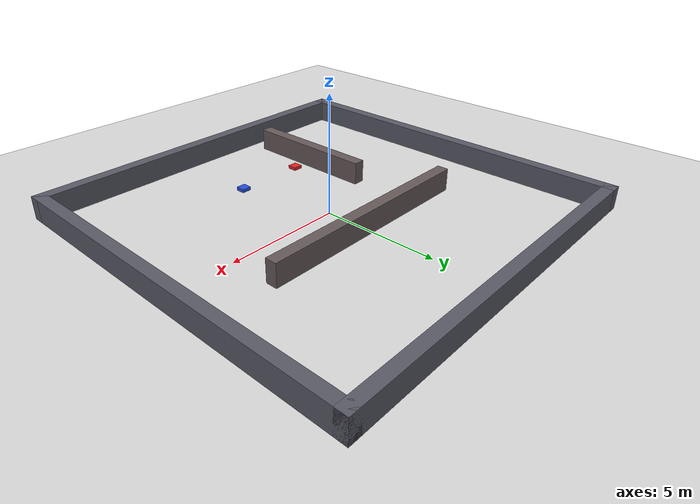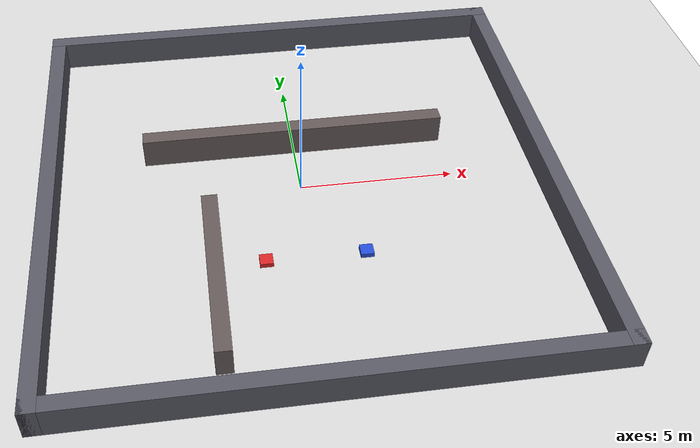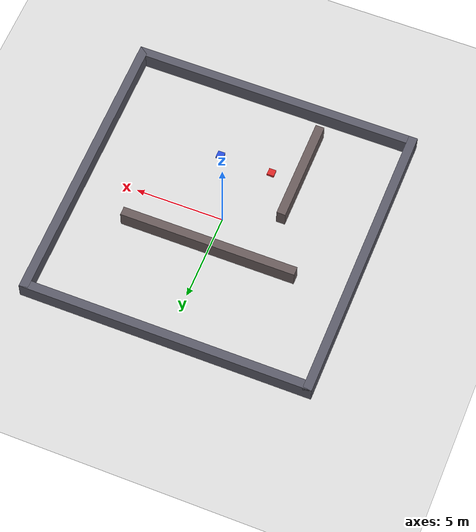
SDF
<?xml version="1.0" ?>
<sdf version="1.8">
  <world name="room_two">
    <physics name="1ms" type="ignored">
      <max_step_size>0.004</max_step_size>
      <real_time_factor>1.0</real_time_factor>
    </physics>
    <plugin filename="gz-sim-physics-system" name="gz::sim::systems::Physics"/>
    <plugin filename="gz-sim-user-commands-system" name="gz::sim::systems::UserCommands"/>
    <plugin filename="gz-sim-scene-broadcaster-system" name="gz::sim::systems::SceneBroadcaster"/>
    <plugin filename="gz-sim-sensors-system" name="gz::sim::systems::Sensors">
      <render_engine>ogre2</render_engine>
    </plugin>

    <light type="directional" name="sun">
      <cast_shadows>true</cast_shadows>
      <pose>0 0 10 0 0 0</pose>
      <diffuse>0.9 0.9 0.9 1</diffuse>
      <specular>0.2 0.2 0.2 1</specular>
      <direction>-0.5 0.1 -0.9</direction>
    </light>

    <model name="ground_plane">
      <static>true</static>
      <link name="link">
        <collision name="collision">
          <geometry><plane><normal>0 0 1</normal><size>60 60</size></plane></geometry>
        </collision>
        <visual name="visual">
          <geometry><plane><normal>0 0 1</normal><size>60 60</size></plane></geometry>
          <material><ambient>0.85 0.85 0.85 1</ambient><diffuse>0.85 0.85 0.85 1</diffuse></material>
        </visual>
      </link>
    </model>

    <!-- Outer boundary (16 x 16 m room), 0.5 m thick walls (= 2 grid cells). -->
    <model name="wall_n"><static>true</static><pose>0 8 0.5 0 0 0</pose>
      <link name="l"><collision name="c"><geometry><box><size>16.5 0.5 1</size></box></geometry></collision>
      <visual name="v"><geometry><box><size>16.5 0.5 1</size></box></geometry>
      <material><ambient>0.35 0.35 0.4 1</ambient><diffuse>0.35 0.35 0.4 1</diffuse></material></visual></link></model>
    <model name="wall_s"><static>true</static><pose>0 -8 0.5 0 0 0</pose>
      <link name="l"><collision name="c"><geometry><box><size>16.5 0.5 1</size></box></geometry></collision>
      <visual name="v"><geometry><box><size>16.5 0.5 1</size></box></geometry>
      <material><ambient>0.35 0.35 0.4 1</ambient><diffuse>0.35 0.35 0.4 1</diffuse></material></visual></link></model>
    <model name="wall_e"><static>true</static><pose>8 0 0.5 0 0 0</pose>
      <link name="l"><collision name="c"><geometry><box><size>0.5 16.5 1</size></box></geometry></collision>
      <visual name="v"><geometry><box><size>0.5 16.5 1</size></box></geometry>
      <material><ambient>0.35 0.35 0.4 1</ambient><diffuse>0.35 0.35 0.4 1</diffuse></material></visual></link></model>
    <model name="wall_w"><static>true</static><pose>-8 0 0.5 0 0 0</pose>
      <link name="l"><collision name="c"><geometry><box><size>0.5 16.5 1</size></box></geometry></collision>
      <visual name="v"><geometry><box><size>0.5 16.5 1</size></box></geometry>
      <material><ambient>0.35 0.35 0.4 1</ambient><diffuse>0.35 0.35 0.4 1</diffuse></material></visual></link></model>

    <!-- Internal walls. -->
    <model name="wall_div"><static>true</static><pose>0 2 0.5 0 0 0</pose>
      <link name="l"><collision name="c"><geometry><box><size>10 0.5 1</size></box></geometry></collision>
      <visual name="v"><geometry><box><size>10 0.5 1</size></box></geometry>
      <material><ambient>0.4 0.35 0.35 1</ambient><diffuse>0.4 0.35 0.35 1</diffuse></material></visual></link></model>
    <model name="wall_stub"><static>true</static><pose>-3 -4 0.5 0 0 0</pose>
      <link name="l"><collision name="c"><geometry><box><size>0.5 6 1</size></box></geometry></collision>
      <visual name="v"><geometry><box><size>0.5 6 1</size></box></geometry>
      <material><ambient>0.4 0.35 0.35 1</ambient><diffuse>0.4 0.35 0.35 1</diffuse></material></visual></link></model>

    <!-- Drone 1 (red), shared base in the open lower area. -->
    <model name="drone1">
      <pose>-1.5 -3.5 0.5 0 0 0</pose>
      <link name="base_link">
        <inertial><mass>1.0</mass>
          <inertia><ixx>0.02</ixx><iyy>0.02</iyy><izz>0.02</izz><ixy>0</ixy><ixz>0</ixz><iyz>0</iyz></inertia></inertial>
        <collision name="collision"><geometry><box><size>0.4 0.4 0.15</size></box></geometry></collision>
        <visual name="visual"><geometry><box><size>0.4 0.4 0.15</size></box></geometry>
          <material><ambient>0.85 0.15 0.15 1</ambient><diffuse>0.85 0.15 0.15 1</diffuse></material></visual>
        <sensor name="lidar" type="gpu_lidar">
          <pose>0 0 0.1 0 0 0</pose><topic>/model/drone1/scan</topic>
          <update_rate>10</update_rate><always_on>1</always_on><visualize>true</visualize>
          <lidar>
            <scan><horizontal><samples>360</samples><resolution>1</resolution>
              <min_angle>-3.141592653589793</min_angle><max_angle>3.141592653589793</max_angle></horizontal>
              <vertical><samples>1</samples><min_angle>0</min_angle><max_angle>0</max_angle></vertical></scan>
            <range><min>0.25</min><max>12.0</max><resolution>0.01</resolution></range>
          </lidar>
        </sensor>
      </link>
      <plugin filename="gz-sim-velocity-control-system" name="gz::sim::systems::VelocityControl">
        <topic>/model/drone1/cmd_vel</topic></plugin>
      <plugin filename="gz-sim-odometry-publisher-system" name="gz::sim::systems::OdometryPublisher">
        <odom_frame>odom</odom_frame><robot_base_frame>drone1</robot_base_frame>
        <dimensions>3</dimensions><odom_topic>/model/drone1/odometry</odom_topic>
        <odom_publish_frequency>30</odom_publish_frequency></plugin>
    </model>

    <!-- Drone 2 (blue), shared base in the open lower area. -->
    <model name="drone2">
      <pose>1.5 -3.5 0.5 0 0 0</pose>
      <link name="base_link">
        <inertial><mass>1.0</mass>
          <inertia><ixx>0.02</ixx><iyy>0.02</iyy><izz>0.02</izz><ixy>0</ixy><ixz>0</ixz><iyz>0</iyz></inertia></inertial>
        <collision name="collision"><geometry><box><size>0.4 0.4 0.15</size></box></geometry></collision>
        <visual name="visual"><geometry><box><size>0.4 0.4 0.15</size></box></geometry>
          <material><ambient>0.15 0.3 0.85 1</ambient><diffuse>0.15 0.3 0.85 1</diffuse></material></visual>
        <sensor name="lidar" type="gpu_lidar">
          <pose>0 0 0.1 0 0 0</pose><topic>/model/drone2/scan</topic>
          <update_rate>10</update_rate><always_on>1</always_on><visualize>true</visualize>
          <lidar>
            <scan><horizontal><samples>360</samples><resolution>1</resolution>
              <min_angle>-3.141592653589793</min_angle><max_angle>3.141592653589793</max_angle></horizontal>
              <vertical><samples>1</samples><min_angle>0</min_angle><max_angle>0</max_angle></vertical></scan>
            <range><min>0.25</min><max>12.0</max><resolution>0.01</resolution></range>
          </lidar>
        </sensor>
      </link>
      <plugin filename="gz-sim-velocity-control-system" name="gz::sim::systems::VelocityControl">
        <topic>/model/drone2/cmd_vel</topic></plugin>
      <plugin filename="gz-sim-odometry-publisher-system" name="gz::sim::systems::OdometryPublisher">
        <odom_frame>odom</odom_frame><robot_base_frame>drone2</robot_base_frame>
        <dimensions>3</dimensions><odom_topic>/model/drone2/odometry</odom_topic>
        <odom_publish_frequency>30</odom_publish_frequency></plugin>
    </model>
  </world>
</sdf>
